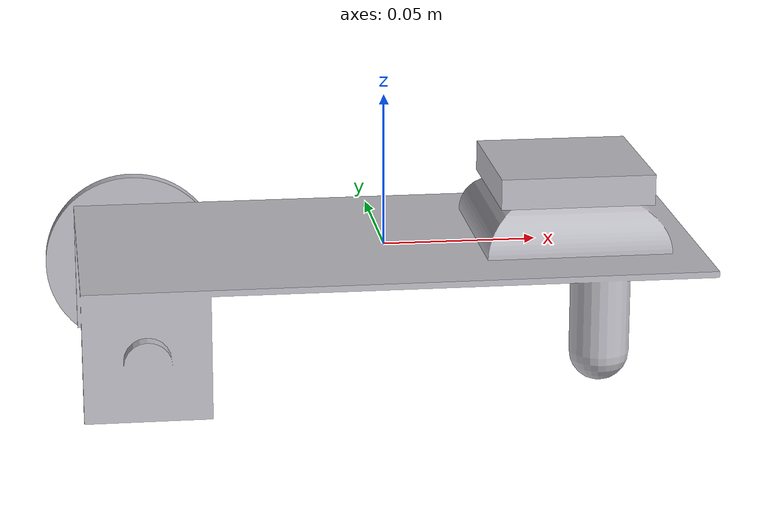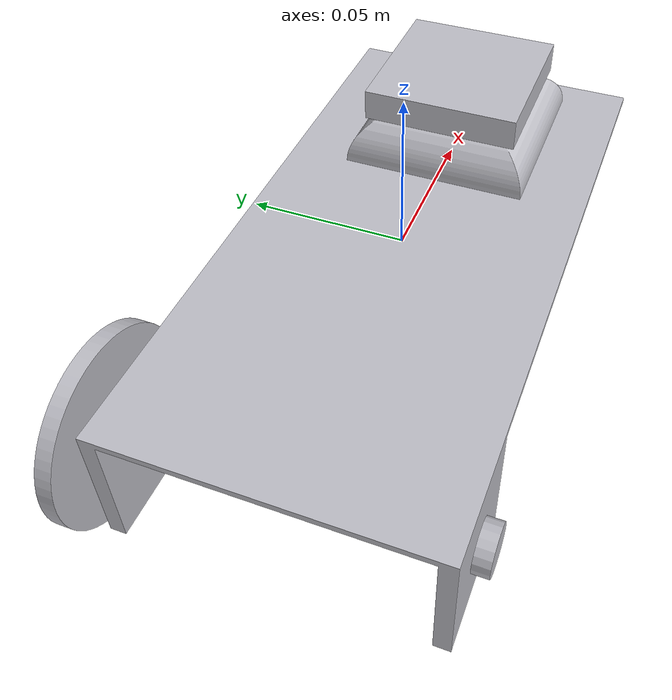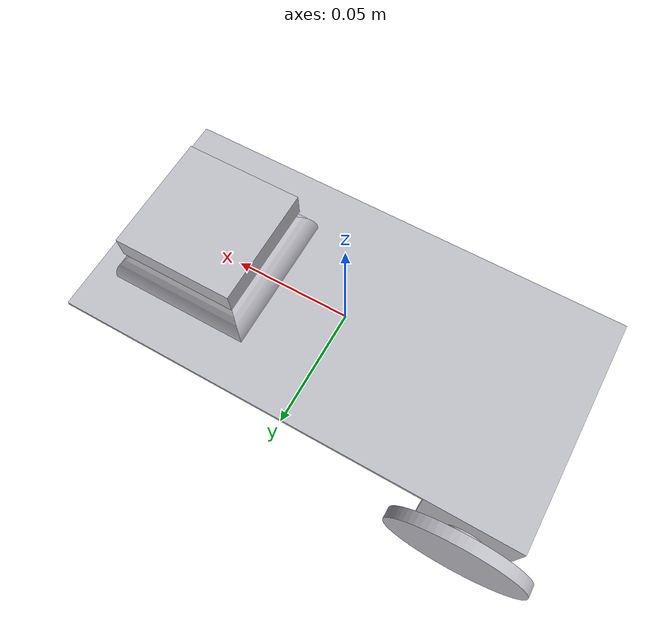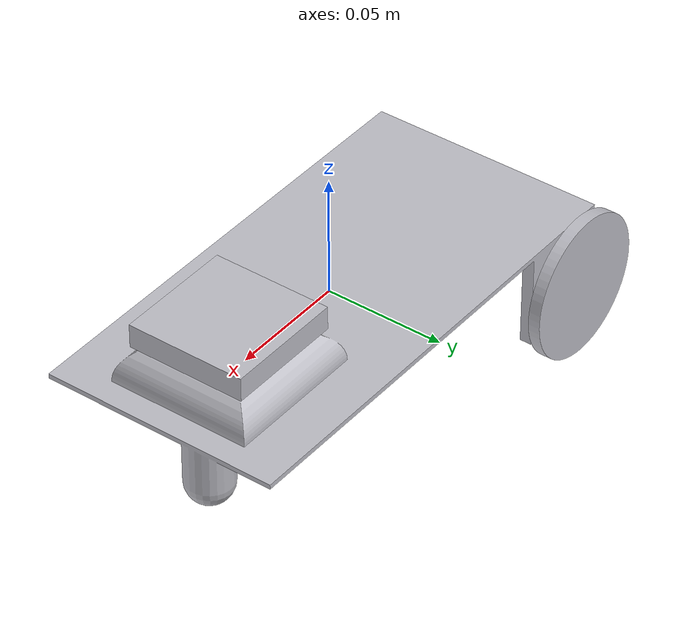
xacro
<?xml version="1.0" ?>
<robot name="robot" xmlns:xacro="http://www.ros.org/wiki/xacro">

<xacro:include filename="$(find robot_description)/urdf/materials.xacro" />
<xacro:include filename="$(find robot_description)/urdf/robot.trans" />
<xacro:include filename="$(find robot_description)/urdf/robot.gazebo" />
<link name="base_link">
  <inertial>
    <origin xyz="0.13670755236213872 0.00030207954224994034 0.06902977750656288" rpy="0 0 0"/>
    <mass value="0.9116492466696066"/>
    <inertia ixx="0.000857" iyy="0.003716" izz="0.004208" ixy="-1.2e-05" iyz="-1e-06" ixz="-0.000246"/>
  </inertial>
  <visual>
    <origin xyz="0 0 0" rpy="0 0 0"/>
    <geometry>
      <mesh filename="package://robot_description/meshes/base_link.stl" scale="0.001 0.001 0.001"/>
    </geometry>
    <material name="silver"/>
  </visual>
  <collision>
    <origin xyz="0 0 0" rpy="0 0 0"/>
    <geometry>
      <mesh filename="package://robot_description/meshes/base_link.stl" scale="0.001 0.001 0.001"/>
    </geometry>
  </collision>
</link>

<link name="left_wheel_1">
  <inertial>
    <origin xyz="8.539792668849078e-08 0.0025000000000017925 3.5280027715911544e-07" rpy="0 0 0"/>
    <mass value="0.11097676048805943"/>
    <inertia ixx="2.5e-05" iyy="5e-05" izz="2.5e-05" ixy="-0.0" iyz="-0.0" ixz="0.0"/>
  </inertial>
  <visual>
    <origin xyz="-0.037316 -0.055 -0.051475" rpy="0 0 0"/>
    <geometry>
      <mesh filename="package://robot_description/meshes/left_wheel_1.stl" scale="0.001 0.001 0.001"/>
    </geometry>
    <material name="silver"/>
  </visual>
  <collision>
    <origin xyz="-0.037316 -0.055 -0.051475" rpy="0 0 0"/>
    <geometry>
      <mesh filename="package://robot_description/meshes/left_wheel_1.stl" scale="0.001 0.001 0.001"/>
    </geometry>
  </collision>
</link>

<link name="right_wheel_1">
  <inertial>
    <origin xyz="8.53979233647606e-08 -0.002500000000000016 3.528002768884986e-07" rpy="0 0 0"/>
    <mass value="0.11097676048805946"/>
    <inertia ixx="2.5e-05" iyy="5e-05" izz="2.5e-05" ixy="-0.0" iyz="-0.0" ixz="0.0"/>
  </inertial>
  <visual>
    <origin xyz="-0.037316 0.055 -0.051475" rpy="0 0 0"/>
    <geometry>
      <mesh filename="package://robot_description/meshes/right_wheel_1.stl" scale="0.001 0.001 0.001"/>
    </geometry>
    <material name="silver"/>
  </visual>
  <collision>
    <origin xyz="-0.037316 0.055 -0.051475" rpy="0 0 0"/>
    <geometry>
      <mesh filename="package://robot_description/meshes/right_wheel_1.stl" scale="0.001 0.001 0.001"/>
    </geometry>
  </collision>
</link>

<link name="liar_1">
  <inertial>
    <origin xyz="-3.0400466502489287e-07 -3.938042365277507e-07 0.005000352800277386" rpy="0 0 0"/>
    <mass value="0.19624999999999992"/>
    <inertia ixx="4.3e-05" iyy="4.3e-05" izz="8.2e-05" ixy="-0.0" iyz="-0.0" ixz="-0.0"/>
  </inertial>
  <visual>
    <origin xyz="-0.176976 -0.000591 -0.088475" rpy="0 0 0"/>
    <geometry>
      <mesh filename="package://robot_description/meshes/liar_1.stl" scale="0.001 0.001 0.001"/>
    </geometry>
    <material name="silver"/>
  </visual>
  <collision>
    <origin xyz="-0.176976 -0.000591 -0.088475" rpy="0 0 0"/>
    <geometry>
      <mesh filename="package://robot_description/meshes/liar_1.stl" scale="0.001 0.001 0.001"/>
    </geometry>
  </collision>
</link>

<joint name="Rev1" type="continuous">
  <origin xyz="0.037316 0.055 0.051475" rpy="0 0 0"/>
  <parent link="base_link"/>
  <child link="left_wheel_1"/>
  <axis xyz="0.0 1.0 0.0"/>
</joint>

<joint name="Rev2" type="continuous">
  <origin xyz="0.037316 -0.055 0.051475" rpy="0 0 0"/>
  <parent link="base_link"/>
  <child link="right_wheel_1"/>
  <axis xyz="0.0 1.0 0.0"/>
</joint>

<joint name="Rigid3" type="fixed">
  <origin xyz="0.176976 0.000591 0.088475" rpy="0 0 0"/>
  <parent link="base_link"/>
  <child link="liar_1"/>
</joint>

</robot>

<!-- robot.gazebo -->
<robot name="robot" xmlns:xacro="http://www.ros.org/wiki/xacro" >

<xacro:property name="body_color" value="Gazebo/Silver" />

<gazebo>
  <plugin name="control" filename="libgazebo_ros_control.so"/>
</gazebo>
<gazebo reference="base_link">
  <material>${body_color}</material>
  <mu1>3500</mu1>
  <mu2>3500</mu2>
  <selfCollide>true</selfCollide>
  <gravity>true</gravity>
</gazebo>

<gazebo reference="left_wheel_1">
  <material>${body_color}</material>
  <mu1>3500</mu1>
  <mu2>3500</mu2>
  <selfCollide>true</selfCollide>
</gazebo>

<gazebo reference="right_wheel_1">
  <material>${body_color}</material>
  <mu1>3500</mu1>
  <mu2>3500</mu2>
  <selfCollide>true</selfCollide>
</gazebo>

<gazebo reference="liar_1">
  <material>${body_color}</material>
  <mu1>3500</mu1>
  <mu2>3500</mu2>
  <selfCollide>true</selfCollide>
</gazebo>
  <gazebo>
  <plugin name="differential_drive_controller" filename="libgazebo_ros_diff_drive.so">

    <!-- Plugin update rate in Hz -->
    <updateRate>$1000</updateRate>

    <!-- Name of left joint, defaults to `left_joint` -->
    <leftJoint>Rev1</leftJoint>

    <!-- Name of right joint, defaults to `right_joint` -->
    <rightJoint>Rev2</rightJoint>

    <!-- The distance from the center of one wheel to the other, in meters, defaults to 0.34 m -->
    <wheelSeparation>0.5380</wheelSeparation>

    <!-- Diameter of the wheels, in meters, defaults to 0.15 m -->
    <wheelDiameter>0.2410</wheelDiameter>

    <!-- Wheel acceleration, in rad/s^2, defaults to 0.0 rad/s^2 -->
    <wheelAcceleration>1.0</wheelAcceleration>

    <!-- Maximum torque which the wheels can produce, in Nm, defaults to 5 Nm -->
    <wheelTorque>20</wheelTorque>

    <!-- Topic to receive geometry_msgs/Twist message commands, defaults to `cmd_vel` -->
    <commandTopic>cmd_vel</commandTopic>

    <!-- Topic to publish nav_msgs/Odometry messages, defaults to `odom` -->
    <odometryTopic>odom</odometryTopic>

    <!-- Odometry frame, defaults to `odom` -->
    <odometryFrame>odom</odometryFrame>

    <!-- Robot frame to calculate odometry from, defaults to `base_footprint` -->
    <robotBaseFrame>base_link</robotBaseFrame>

    <!-- Odometry source, 0 for ENCODER, 1 for WORLD, defaults to WORLD -->
    <odometrySource>1</odometrySource>

    <!-- Set to true to publish transforms for the wheel links, defaults to false -->
    <publishWheelTF>true</publishWheelTF>

    <!-- Set to true to publish transforms for the odometry, defaults to true -->
    <publishOdom>true</publishOdom>

    <!-- Set to true to publish sensor_msgs/JointState on /joint_states for the wheel joints, defaults to false -->
    <publishWheelJointState>true</publishWheelJointState>

    <!-- Set to true to swap right and left wheels, defaults to true -->
    <legacyMode>false</legacyMode>
  </plugin>
</gazebo>

</robot>
